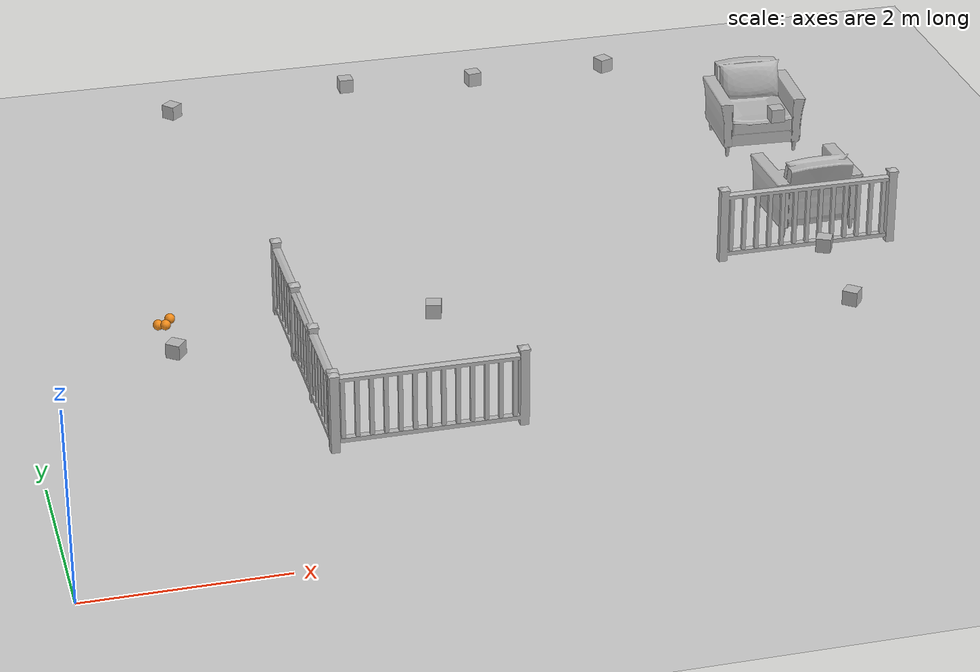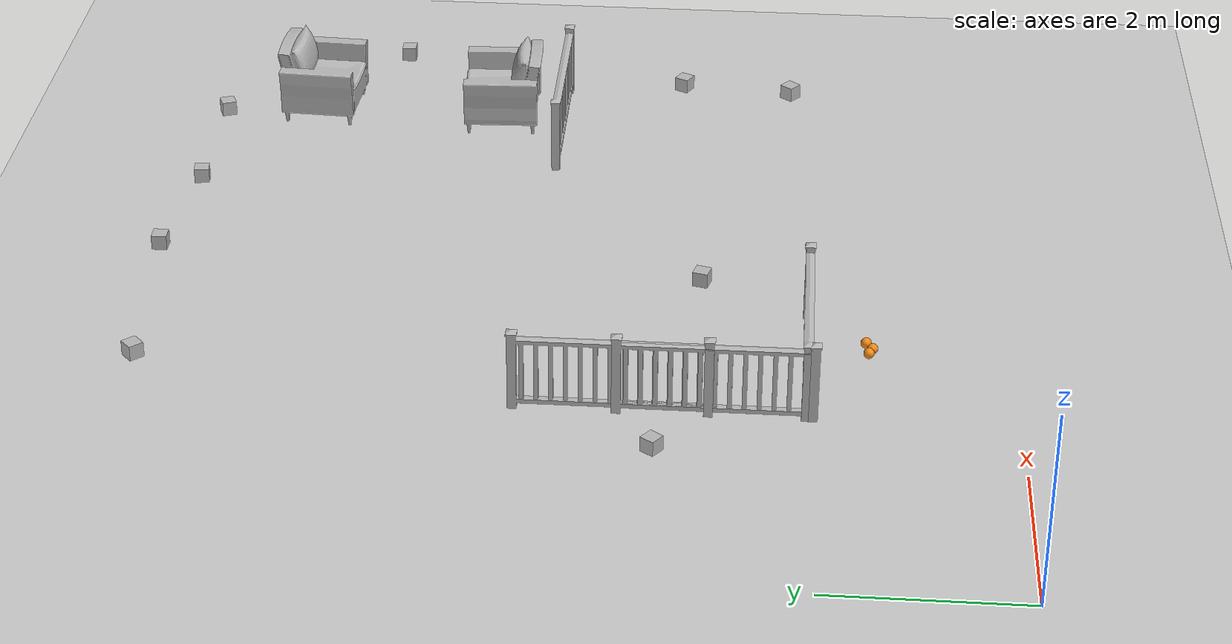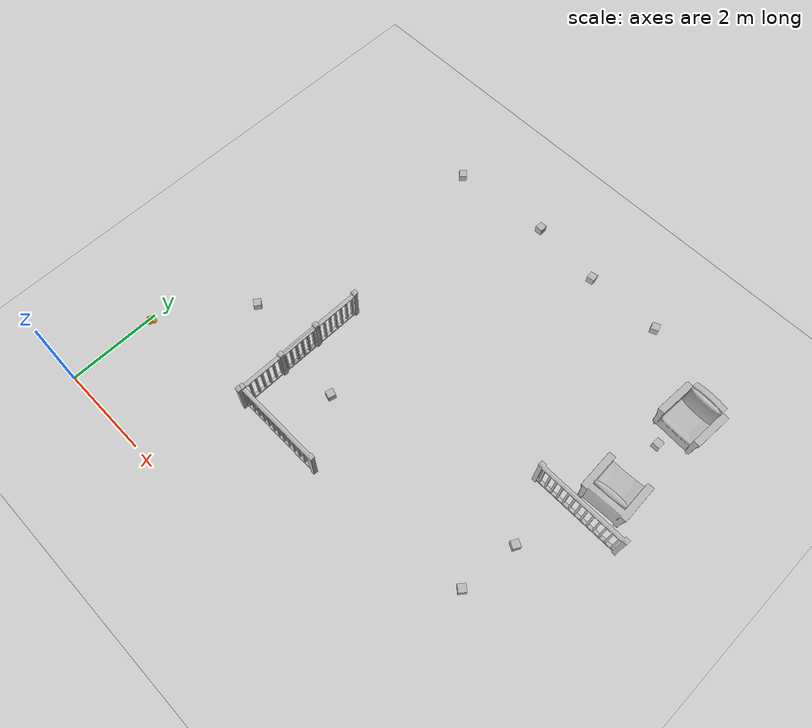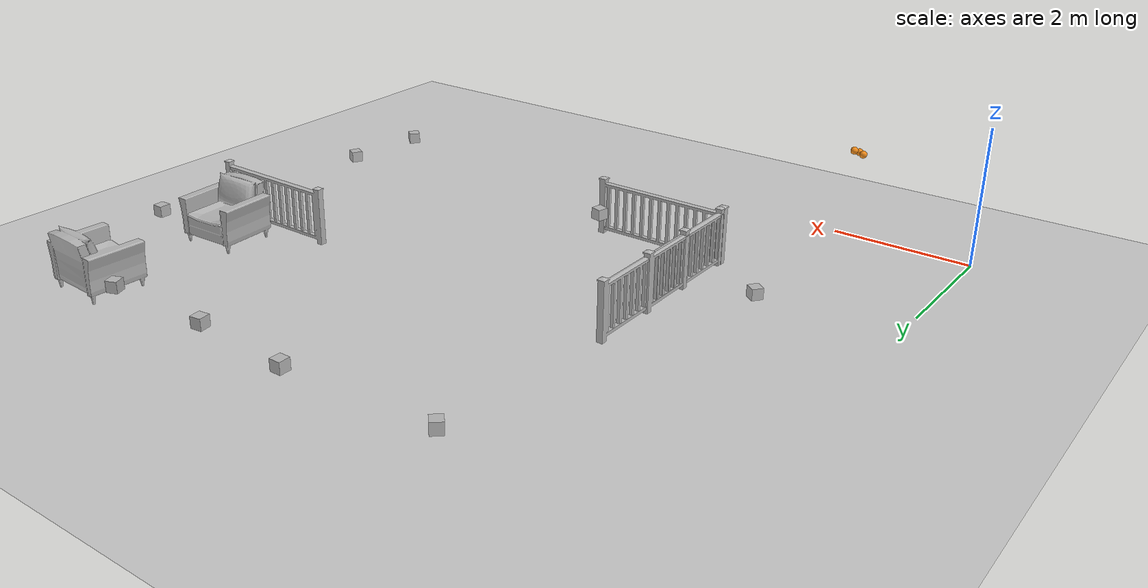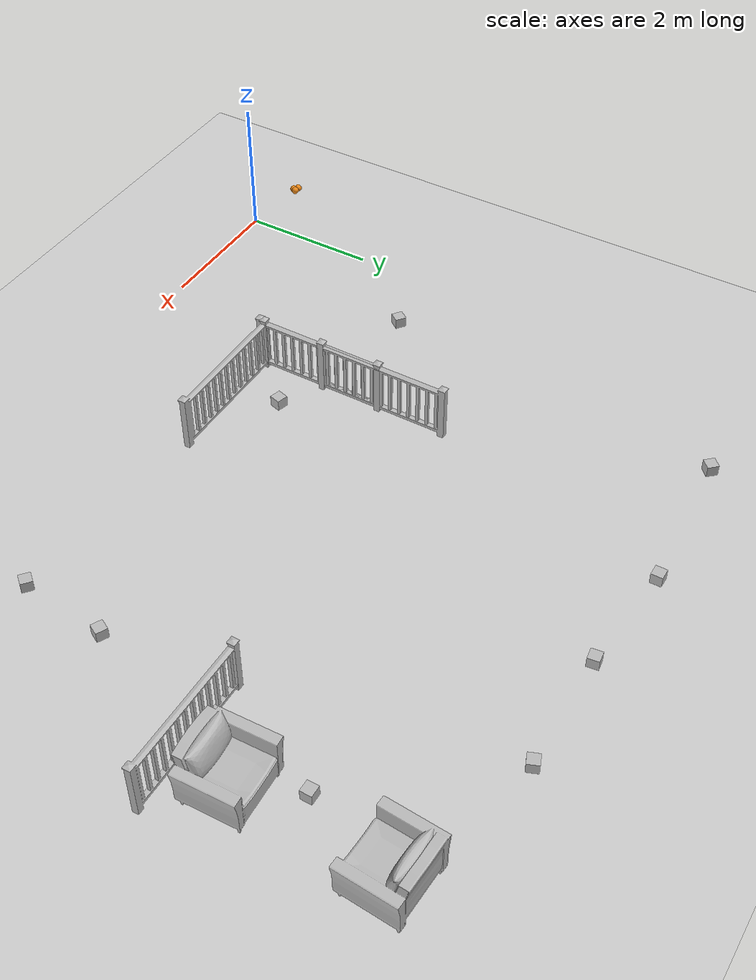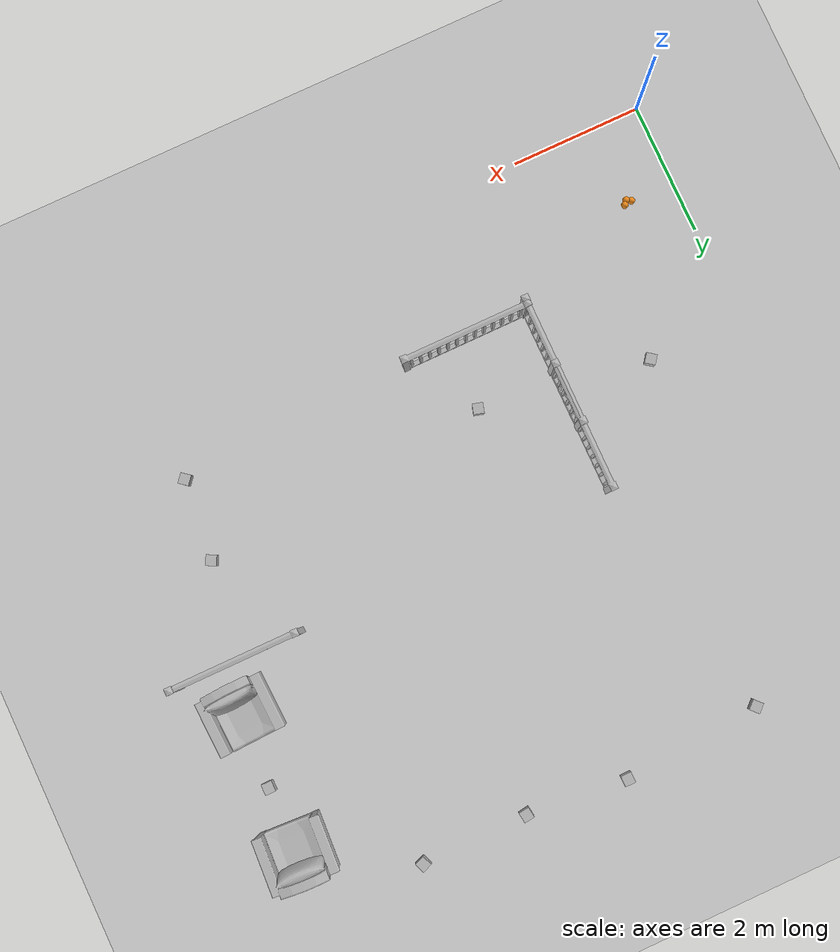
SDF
<sdf version="1.4">
 <world name="default">
  <model name="ground_plane">
   <static>1</static>
   <link name="link">
    <collision name="collision">
     <geometry><plane><normal>0 0 1</normal><size>100 100</size></plane></geometry>
     <surface><friction><ode><mu>100</mu><mu2>50</mu2></ode></friction></surface>
    </collision>
    <visual name="visual">
     <cast_shadows>0</cast_shadows>
     <geometry><plane><normal>0 0 1</normal><size>100 100</size></plane></geometry>
     <material>
      <script><uri>file://media/materials/scripts/gazebo.material</uri><name>Gazebo/Grey</name></script>
     </material>
    </visual>
   </link>
  </model>
  <model name="armchair_5">
   <static>1</static>
   <pose>8.64786 7.36606 0 0 -0 1.51589</pose>
   <link name="body">
    <inertial>
     <mass>5</mass>
     <inertia><ixx>1</ixx><ixy>0</ixy><iyy>1</iyy><ixz>0</ixz><iyz>0</iyz><izz>1</izz></inertia>
    </inertial>
    <collision name="collision">
     <geometry><mesh><uri>model://armchair/meshes/armchair.dae</uri></mesh></geometry>
    </collision>
    <visual name="visual">
     <geometry><mesh><uri>model://armchair/meshes/armchair.dae</uri></mesh></geometry>
    </visual>
   </link>
  </model>
  <model name="armchair_6">
   <static>1</static>
   <pose>9.20262 6.09839 0 0 0 -1.52818</pose>
   <link name="body">
    <inertial>
     <mass>5</mass>
     <inertia><ixx>1</ixx><ixy>0</ixy><iyy>1</iyy><ixz>0</ixz><iyz>0</iyz><izz>1</izz></inertia>
    </inertial>
    <collision name="collision">
     <geometry><mesh><uri>model://armchair/meshes/armchair.dae</uri></mesh></geometry>
    </collision>
    <visual name="visual">
     <geometry><mesh><uri>model://armchair/meshes/armchair.dae</uri></mesh></geometry>
    </visual>
   </link>
  </model>
  <model name="fence">
   <static>1</static>
   <pose>9.69718 5.00591 0 0 0 -3.14159</pose>
   <link name="body">
    <inertial>
     <mass>5</mass>
     <inertia><ixx>1</ixx><ixy>0</ixy><iyy>1</iyy><ixz>0</ixz><iyz>0</iyz><izz>1</izz></inertia>
    </inertial>
    <collision name="collision">
     <geometry><mesh><uri>model://fence/meshes/fence.dae</uri></mesh></geometry>
    </collision>
    <visual name="visual"><geometry><mesh><uri>model://fence/meshes/fence.dae</uri></mesh></geometry></visual>
   </link>
  </model>
  <model name="fence_1">
   <static>1</static>
   <pose>4.80675 2.1565 0 0 0 -3.14159</pose>
   <link name="body">
    <inertial>
     <mass>5</mass>
     <inertia><ixx>1</ixx><ixy>0</ixy><iyy>1</iyy><ixz>0</ixz><iyz>0</iyz><izz>1</izz></inertia>
    </inertial>
    <collision name="collision">
     <geometry><mesh><uri>model://fence/meshes/fence.dae</uri></mesh></geometry>
    </collision>
    <visual name="visual"><geometry><mesh><uri>model://fence/meshes/fence.dae</uri></mesh></geometry></visual>
   </link>
  </model>
  <model name="unit_sphere_clone_clone_0">
   <static>1</static>
   <pose>1.1017 1.6057 1.85272 0 -0 0</pose>
   <link name="link">
    <inertial>
     <mass>1</mass>
     <inertia><ixx>0.1</ixx><ixy>0</ixy><ixz>0</ixz><iyy>0.1</iyy><iyz>0</iyz><izz>0.1</izz></inertia>
    </inertial>
    <collision name="collision"><geometry><sphere><radius>0.0486888</radius></sphere></geometry></collision>
    <visual name="visual">
     <geometry><sphere><radius>0.0486888</radius></sphere></geometry>
     <material>
      <script><name>Gazebo/Orange</name><uri>file://media/materials/scripts/gazebo.material</uri></script>
     </material>
    </visual>
   </link>
  </model>
  <model name="unit_sphere_clone_clone_1">
   <static>1</static>
   <pose>1.21544 1.63169 1.88908 0 -0 0</pose>
   <link name="link">
    <inertial>
     <mass>1</mass>
     <inertia><ixx>0.1</ixx><ixy>0</ixy><ixz>0</ixz><iyy>0.1</iyy><iyz>0</iyz><izz>0.1</izz></inertia>
    </inertial>
    <collision name="collision"><geometry><sphere><radius>0.0486888</radius></sphere></geometry></collision>
    <visual name="visual">
     <geometry><sphere><radius>0.0486888</radius></sphere></geometry>
     <material>
      <script><name>Gazebo/Orange</name><uri>file://media/materials/scripts/gazebo.material</uri></script>
     </material>
    </visual>
   </link>
  </model>
  <model name="unit_sphere_clone_clone_6">
   <static>1</static>
   <pose>1.16525 1.57326 1.86136 0 -0 0</pose>
   <link name="link">
    <inertial>
     <mass>1</mass>
     <inertia><ixx>0.1</ixx><ixy>0</ixy><ixz>0</ixz><iyy>0.1</iyy><iyz>0</iyz><izz>0.1</izz></inertia>
    </inertial>
    <collision name="collision"><geometry><sphere><radius>0.0486888</radius></sphere></geometry></collision>
    <visual name="visual">
     <geometry><sphere><radius>0.0486888</radius></sphere></geometry>
     <material>
      <script><name>Gazebo/Orange</name><uri>file://media/materials/scripts/gazebo.material</uri></script>
     </material>
    </visual>
   </link>
  </model>
  <model name="fence_3">
   <static>1</static>
   <pose>2.86827 1.96178 0 0 -0 1.5708</pose>
   <link name="body">
    <inertial>
     <mass>5</mass>
     <inertia><ixx>1</ixx><ixy>0</ixy><iyy>1</iyy><ixz>0</ixz><iyz>0</iyz><izz>1</izz></inertia>
    </inertial>
    <collision name="collision">
     <geometry><mesh><uri>model://fence/meshes/fence.dae</uri></mesh></geometry>
    </collision>
    <visual name="visual"><geometry><mesh><uri>model://fence/meshes/fence.dae</uri></mesh></geometry></visual>
   </link>
  </model>
  <model name="fence_0">
   <static>1</static>
   <pose>2.7693 5.03663 0 0 0 -1.5708</pose>
   <link name="body">
    <inertial>
     <mass>5</mass>
     <inertia><ixx>1</ixx><ixy>0</ixy><iyy>1</iyy><ixz>0</ixz><iyz>0</iyz><izz>1</izz></inertia>
    </inertial>
    <collision name="collision">
     <geometry><mesh><uri>model://fence/meshes/fence.dae</uri></mesh></geometry>
    </collision>
    <visual name="visual"><geometry><mesh><uri>model://fence/meshes/fence.dae</uri></mesh></geometry></visual>
   </link>
  </model>
  <model name="box_12">
   <static>1</static>
   <pose>8.22687 2.25517 0.745479 0 -0 0.882976</pose>
   <link name="body">
    <inertial>
     <mass>5</mass>
     <inertia><ixx>1</ixx><ixy>0</ixy><iyy>1</iyy><ixz>0</ixz><iyz>0</iyz><izz>1</izz></inertia>
    </inertial>
    <collision name="collision">
     <geometry><mesh><uri>model://box/meshes/box.dae</uri></mesh></geometry>
    </collision>
    <visual name="visual"><geometry><mesh><uri>model://box/meshes/box.dae</uri></mesh></geometry></visual>
   </link>
  </model>
  <model name="box_13">
   <static>1</static>
   <pose>8.23745 3.51758 0.73907 0 0 -0.479408</pose>
   <link name="body">
    <inertial>
     <mass>5</mass>
     <inertia><ixx>1</ixx><ixy>0</ixy><iyy>1</iyy><ixz>0</ixz><iyz>0</iyz><izz>1</izz></inertia>
    </inertial>
    <collision name="collision">
     <geometry><mesh><uri>model://box/meshes/box.dae</uri></mesh></geometry>
    </collision>
    <visual name="visual"><geometry><mesh><uri>model://box/meshes/box.dae</uri></mesh></geometry></visual>
   </link>
  </model>
  <model name="box_14">
   <static>1</static>
   <pose>8.82555 6.65912 0.727034 0 -0 0</pose>
   <link name="body">
    <inertial>
     <mass>5</mass>
     <inertia><ixx>1</ixx><ixy>0</ixy><iyy>1</iyy><ixz>0</ixz><iyz>0</iyz><izz>1</izz></inertia>
    </inertial>
    <collision name="collision">
     <geometry><mesh><uri>model://box/meshes/box.dae</uri></mesh></geometry>
    </collision>
    <visual name="visual"><geometry><mesh><uri>model://box/meshes/box.dae</uri></mesh></geometry></visual>
   </link>
  </model>
  <model name="box_15">
   <static>1</static>
   <pose>2.43715 8.54442 0.712501 0 -0 2.31526</pose>
   <link name="body">
    <inertial>
     <mass>5</mass>
     <inertia><ixx>1</ixx><ixy>0</ixy><iyy>1</iyy><ixz>0</ixz><iyz>0</iyz><izz>1</izz></inertia>
    </inertial>
    <collision name="collision">
     <geometry><mesh><uri>model://box/meshes/box.dae</uri></mesh></geometry>
    </collision>
    <visual name="visual"><geometry><mesh><uri>model://box/meshes/box.dae</uri></mesh></geometry></visual>
   </link>
  </model>
  <model name="box_16">
   <static>1</static>
   <pose>4.28426 8.62195 0.745482 0 -0 0</pose>
   <link name="body">
    <inertial>
     <mass>5</mass>
     <inertia><ixx>1</ixx><ixy>0</ixy><iyy>1</iyy><ixz>0</ixz><iyz>0</iyz><izz>1</izz></inertia>
    </inertial>
    <collision name="collision">
     <geometry><mesh><uri>model://box/meshes/box.dae</uri></mesh></geometry>
    </collision>
    <visual name="visual"><geometry><mesh><uri>model://box/meshes/box.dae</uri></mesh></geometry></visual>
   </link>
  </model>
  <model name="box_17">
   <static>1</static>
   <pose>5.76854 8.47081 0.725085 0 -0 0.135666</pose>
   <link name="body">
    <inertial>
     <mass>5</mass>
     <inertia><ixx>1</ixx><ixy>0</ixy><iyy>1</iyy><ixz>0</ixz><iyz>0</iyz><izz>1</izz></inertia>
    </inertial>
    <collision name="collision">
     <geometry><mesh><uri>model://box/meshes/box.dae</uri></mesh></geometry>
    </collision>
    <visual name="visual"><geometry><mesh><uri>model://box/meshes/box.dae</uri></mesh></geometry></visual>
   </link>
  </model>
  <model name="box_18">
   <static>1</static>
   <pose>7.35752 8.46847 0.719962 0 -0 0.377772</pose>
   <link name="body">
    <inertial>
     <mass>5</mass>
     <inertia><ixx>1</ixx><ixy>0</ixy><iyy>1</iyy><ixz>0</ixz><iyz>0</iyz><izz>1</izz></inertia>
    </inertial>
    <collision name="collision">
     <geometry><mesh><uri>model://box/meshes/box.dae</uri></mesh></geometry>
    </collision>
    <visual name="visual"><geometry><mesh><uri>model://box/meshes/box.dae</uri></mesh></geometry></visual>
   </link>
  </model>
  <model name="box_19">
   <static>1</static>
   <pose>3.98629 3.12503 0.730714 0 0 -0.270126</pose>
   <link name="body">
    <inertial>
     <mass>5</mass>
     <inertia><ixx>1</ixx><ixy>0</ixy><iyy>1</iyy><ixz>0</ixz><iyz>0</iyz><izz>1</izz></inertia>
    </inertial>
    <collision name="collision">
     <geometry><mesh><uri>model://box/meshes/box.dae</uri></mesh></geometry>
    </collision>
    <visual name="visual"><geometry><mesh><uri>model://box/meshes/box.dae</uri></mesh></geometry></visual>
   </link>
  </model>
  <model name="box_21">
   <static>1</static>
   <pose>1.54077 3.42393 0.43305 0 -0 0.934785</pose>
   <link name="body">
    <inertial>
     <mass>5</mass>
     <inertia><ixx>1</ixx><ixy>0</ixy><iyy>1</iyy><ixz>0</ixz><iyz>0</iyz><izz>1</izz></inertia>
    </inertial>
    <collision name="collision">
     <geometry><mesh><uri>model://box/meshes/box.dae</uri></mesh></geometry>
    </collision>
    <visual name="visual"><geometry><mesh><uri>model://box/meshes/box.dae</uri></mesh></geometry></visual>
   </link>
  </model>
 </world>
</sdf>
